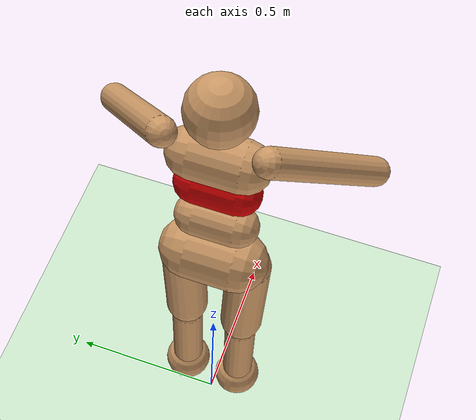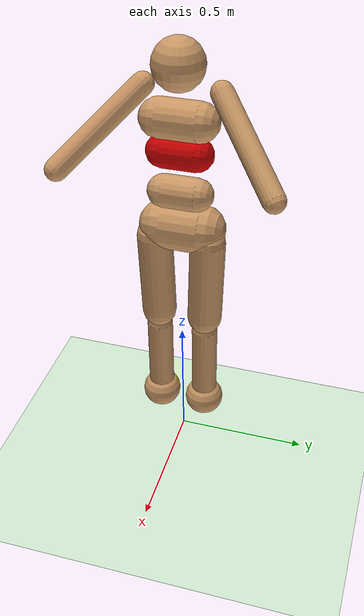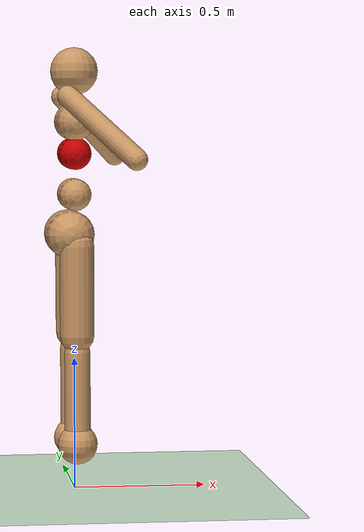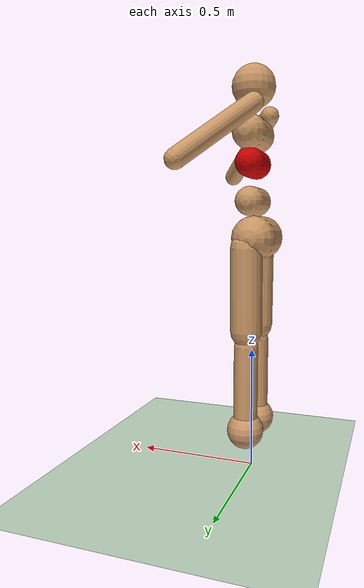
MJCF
<mujoco model="Humanoid">
  <compiler coordinate="local" angle="radian" />
  <size njmax="200" nuser_geom="1" nstack="82825" />
  <default>
    <!--   limited= 动作幅度限制是否奏效
            armature= 对action的限制，可能是时平均，可能需要见效来体现我们算法的you shi
            damping= 卡住joint的作用力，和角速度成正比
        -->
    <joint limited="true" armature="1" damping="1" />
    <geom condim="3" conaffinity="0" margin="0.1" friction="1.0 0.5 0.5" rgba="0.8 0.6 0.4 1" />
  </default>
  <option timestep="0.01" integrator="RK4" />
  <asset>
    <texture type="skybox" builtin="gradient" width="100" height="100" rgb1="1 1 1" rgb2="0 0 0" />
    <texture name="texgeom" type="cube" builtin="flat" mark="cross" width="127" height="1278" rgb1="0.8 0.6 0.4" rgb2="0.8 0.6 0.4" markrgb="1 1 1" random="0.01" />
    <texture name="texplane" type="2d" builtin="checker" rgb1="0 0 0" rgb2="0.8 0.8 0.8" width="100" height="100" />
    <material name='MatPlane' texture="texplane" shininess="1" texrepeat="60 60" specular="1"  reflectance="0.5" />
    <material name='geom' texture="texgeom" texuniform="true" />
  </asset>
  <worldbody>
    <light directional="true" cutoff="100" exponent="1" diffuse="1 1 1" specular=".1 .1 .1" pos="0 0 1.3" dir="-0 0 -1.3" />
    <geom name='floor' material="MatPlane" pos='0 0 0' size='40 40 40' type='plane' conaffinity='1' rgba='0.8 0.9 0.8 1' condim='3' />
    <body name="torso" pos="0 0 1.4">
      <inertial pos="0 0 0.0403624" mass="8.32208" diaginertia="0.159056 0.147471 0.0330627" />
      <joint name="root" type="free" limited="false" pos="0 0 0" axis="0 0 1" margin="0.01" armature="0" damping="0" />
      <geom name="torso1" type="capsule" size="0.07 0.07" pos="0 0 0" quat="0.707107 0.707107 0 0" user="0"/>
      <geom name="head" type="sphere" size="0.09" pos="0 0 0.19" user="0" />
      <geom name="uwaist" type="capsule" size="0.06 0.06" pos="0 0 -0.12" quat="0.707107 0.707107 0 0" user="0" rgba='0.8 0.0 0.0 1'/>
      <body name="pelvis" pos="0 0 -0.425" quat="0.999998 0 -0.002 0">
        <inertial pos="-0.0148387 0 0.0387097" quat="0.997805 0 0.0662273 0" mass="7.88854" diaginertia="0.0795697 0.0619562 0.0449816" />
        <geom name="lwaist" type="capsule" size="0.06 0.06" pos="0 0 0.15" quat="0.707107 0.707107 0 0" user="0" />
        <geom name="butt" type="capsule" size="0.09 0.07" pos="-0.02 0 0" quat="0.707107 0.707107 0 0" user="0" />
        <body name="right_thigh" pos="0 -0.1 -0.04">
          <inertial pos="0 0.005 -0.17" quat="0.999892 0.0147011 0 0" mass="5.37761" diaginertia="0.0792387 0.0792387 0.0113602" />
          <joint name="right_hip1" type="hinge" pos="0 0 0" axis="1 0 0" stiffness="10" range="-0.15 0.0872665" margin="0.01" />
          <joint name="right_hip3" type="hinge" pos="0 0 0" axis="0 -1 0" stiffness="20" range="-0.174533 1.91986" margin="0.01" />
          <geom name="right_thigh1" type="capsule" size="0.065 0.170074" pos="0 0.005 -0.17" quat="0.999892 0.0147011 0 0" user="0" />
          <body name="right_shin" pos="0 0.01 -0.403">
            <inertial pos="0 0 -0.181" mass="3.10016" diaginertia="0.045501 0.045501 0.00372174" />
            <joint name="right_knee" type="hinge" pos="0 0 0.05" axis="0 -1 0" range="-1.3 -0.0349066" margin="0.01" />
            <geom name="right_shin1" type="capsule" size="0.049 0.181" pos="0 0 -0.181" user="0" />
            <body name="right_foot" pos="0 0 -0.45">
              <geom name="right_foot" type="sphere" size="0.075" pos="0 0 0.1" user="0" />
            </body>
          </body>
        </body>
        <body name="left_thigh" pos="0 0.1 -0.04">
          <inertial pos="0 -0.005 -0.17" quat="0.999892 -0.0147011 0 0" mass="5.37761" diaginertia="0.0792387 0.0792387 0.0113602" />
          <joint name="left_hip1" type="hinge" pos="0 0 0" axis="-1 0 0" stiffness="10" range="-0.15 0.0872665" margin="0.01" />
          <joint name="left_hip3" type="hinge" pos="0 0 0" axis="0 -1 0" stiffness="20" range="-0.174533 1.91986" margin="0.01" />
          <geom name="left_thigh1" type="capsule" size="0.065 0.170074" pos="0 -0.005 -0.17" quat="0.999892 -0.0147011 0 0" user="0" />
          <body name="left_shin" pos="0 -0.01 -0.403">
            <inertial pos="0 0 -0.181" mass="3.10016" diaginertia="0.045501 0.045501 0.00372174" />
            <joint name="left_knee" type="hinge" pos="0 0 0.05" axis="0 -1 0" range="-1.3 -0.0349066" margin="0.01" />
            <geom name="left_shin1" type="capsule" size="0.049 0.181" pos="0 0 -0.181" user="0" />
            <body name="left_foot" pos="0 0 -0.45">
              <geom name="left_foot" type="sphere" size="0.075" pos="0 0 0.1" user="0" />
            </body>
          </body>
        </body>
      </body>
      <body name="right_upper_arm" pos="0 -0.17 0.06">
        <inertial pos="0.08 -0.08 -0.08" quat="0.888074 -0.325058 -0.325058 0" mass="1.59406" diaginertia="0.0139972 0.0139972 0.00127525" />
        <joint name="right_shoulder1" type="hinge" pos="0 0 0" axis="0 -0.707107 0.707107" stiffness="1" range="-1.0472 0.785398" margin="0.01" />
        <joint name="right_shoulder2" type="hinge" pos="0 0 0" axis="0.816497 0.408248 0.408248" stiffness="1" range="-0.785398 0.785398" margin="0.01" />
        <geom name="right_uarm1" type="capsule" size="0.04 0.2" pos="0.08 -0.08 -0.08" quat="0.888074 -0.325058 -0.325058 0" user="0" />
      </body>
      <body name="left_upper_arm" pos="0 0.17 0.06">
        <inertial pos="0.08 0.08 -0.08" quat="0.888074 0.325058 -0.325058 0" mass="1.59406" diaginertia="0.0139972 0.0139972 0.00127525" />
        <joint name="left_shoulder1" type="hinge" pos="0 0 0" axis="0 0.707107 0.707107" stiffness="1" range="-1.0472 0.785398" margin="0.01" />
        <joint name="left_shoulder2" type="hinge" pos="0 0 0" axis="0.816497 -0.408248 0.408248" stiffness="1" range="-0.785398 0.785398" margin="0.01" />
        <geom name="left_uarm1" type="capsule" size="0.04 0.2" pos="0.08 0.08 -0.08" quat="0.888074 0.325058 -0.325058 0" user="0" />
      </body>
    </body>
  </worldbody>
  <actuator>
    <motor joint='right_hip1' ctrlrange="-100.0 100.0" ctrllimited="true" />
    <motor joint='right_hip3' ctrlrange="-100.0 100.0" ctrllimited="true" />
    <motor joint='right_knee' ctrlrange="-100.0 100.0" ctrllimited="true" />
    <motor joint='left_hip1' ctrlrange="-100.0 100.0" ctrllimited="true" />
    <motor joint='left_hip3' ctrlrange="-100.0 100.0" ctrllimited="true" />
    <motor joint='left_knee' ctrlrange="-100.0 100.0" ctrllimited="true" />
    <motor joint='right_shoulder1' ctrlrange="-20 20" ctrllimited="true" />
    <motor joint='right_shoulder2' ctrlrange="-20 20" ctrllimited="true" />
    <motor joint='left_shoulder1' ctrlrange="-20 20" ctrllimited="true" />
    <motor joint='left_shoulder2' ctrlrange="-20 20" ctrllimited="true" />
  </actuator>
</mujoco>
